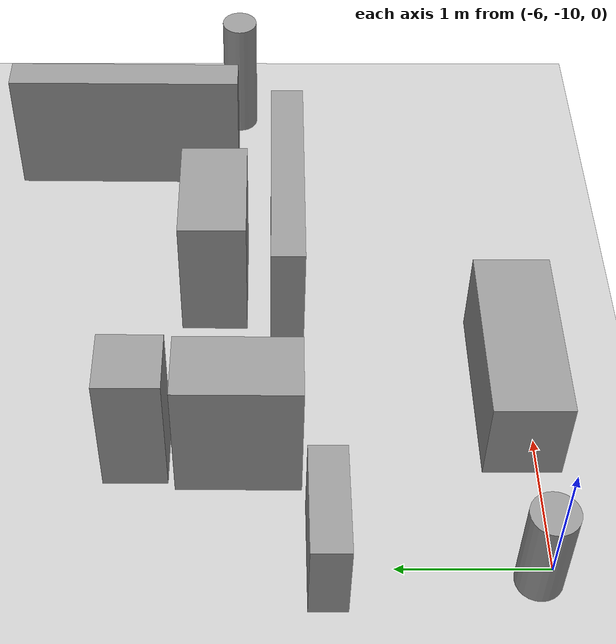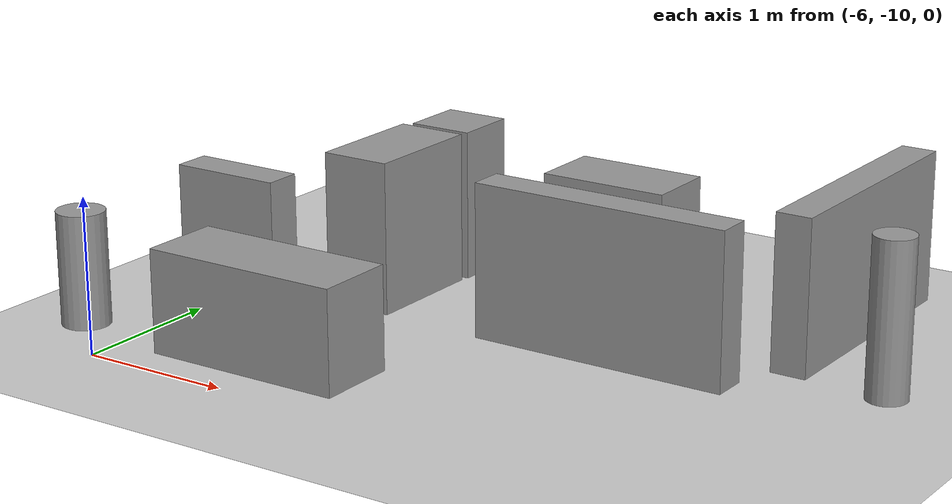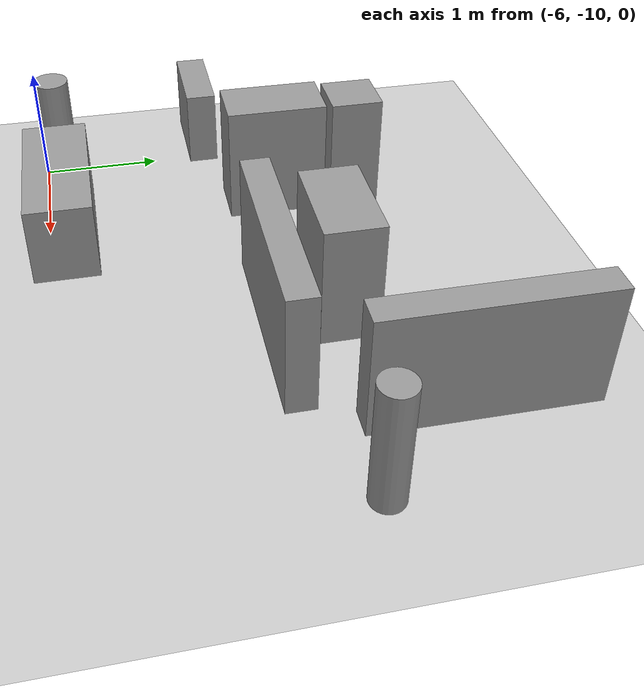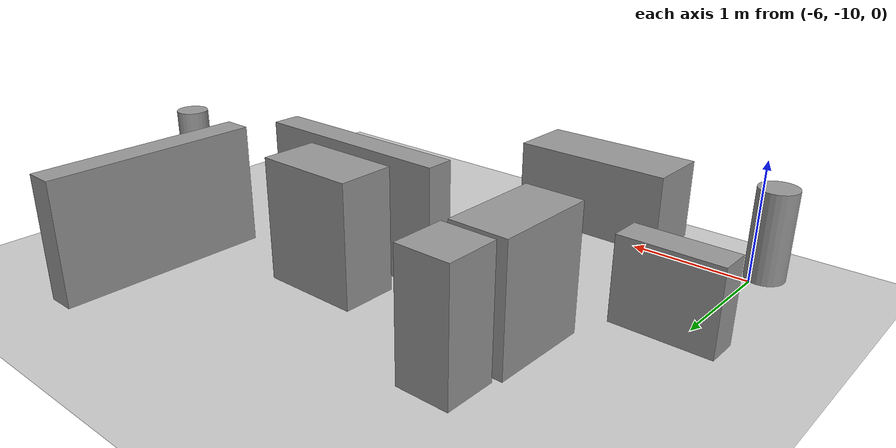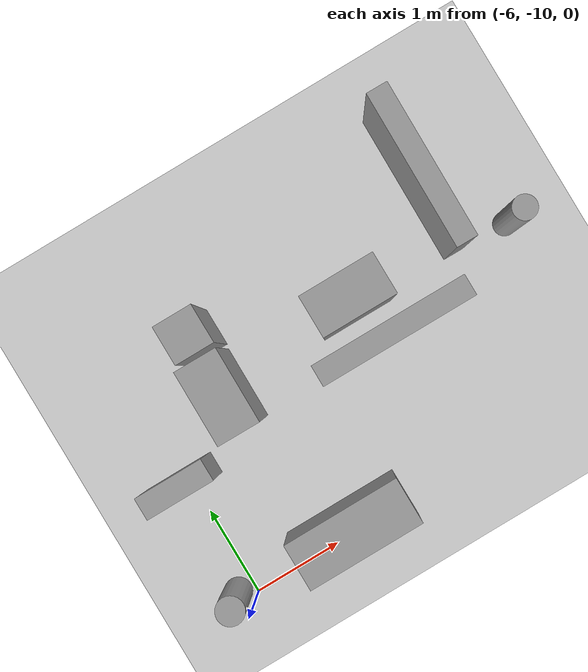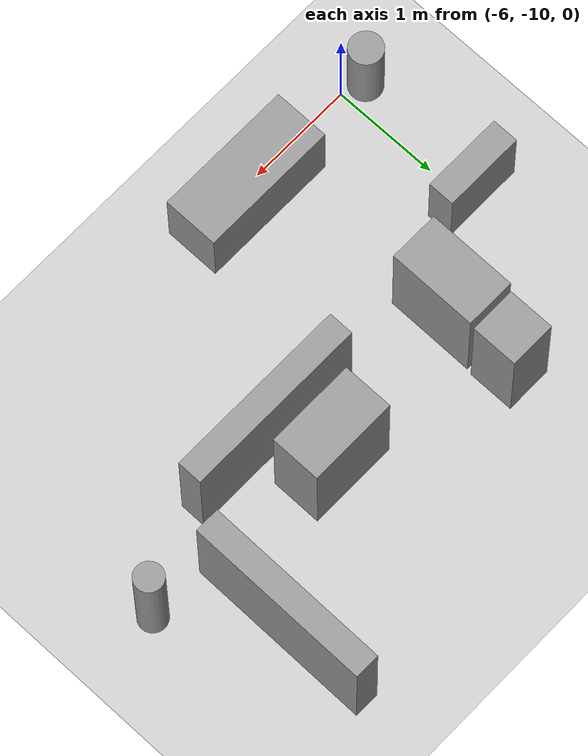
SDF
<sdf version="1.6">
 <world name="default">
  <model name="ground_plane">
   <static>1</static>
   <link name="link">
    <collision name="collision">
     <geometry><plane><normal>0 0 1</normal><size>100 100</size></plane></geometry>
     <surface><friction><ode><mu>100</mu><mu2>50</mu2></ode></friction></surface>
    </collision>
    <visual name="visual">
     <cast_shadows>0</cast_shadows>
     <geometry><plane><normal>0 0 1</normal><size>100 100</size></plane></geometry>
     <material>
      <script><uri>file://media/materials/scripts/gazebo.material</uri><name>Gazebo/Grey</name></script>
     </material>
    </visual>
   </link>
  </model>
  <model name="cma_armario_s_0">
   <link name="link_1">
    <pose>-2e-06 -3e-06 0 0 -0 0</pose>
    <inertial>
     <mass>0.390159</mass>
     <inertia>
      <ixx>0.039647</ixx>
      <ixy>0</ixy>
      <ixz>0</ixz>
      <iyy>0.0550708</iyy>
      <iyz>0</iyz>
      <izz>0.0296912</izz>
     </inertia>
    </inertial>
    <visual name="visual">
     <geometry><box><size>0.832942 0.468397 1</size></box></geometry>
     <material>
      <lighting>1</lighting>
      <script><uri>file://media/materials/scripts/gazebo.material</uri><name>Gazebo/Grey</name></script>
      <ambient>0.3 0.3 0.3 1</ambient>
      <diffuse>0.7 0.7 0.7 1</diffuse>
      <specular>0.01 0.01 0.01 1</specular>
      <emissive>0 0 0 1</emissive>
     </material>
    </visual>
    <collision name="collision">
     <geometry><box><size>0.832942 0.468397 1</size></box></geometry>
     <surface>
      <friction>
       <ode><mu>1</mu><mu2>1</mu2><fdir1>0 0 0</fdir1><slip1>0</slip1><slip2>0</slip2></ode>
       <torsional>
        <coefficient>1</coefficient>
        <patch_radius>0</patch_radius>
        <surface_radius>0</surface_radius>
        <use_patch_radius>1</use_patch_radius>
        <ode><slip>0</slip></ode>
       </torsional>
      </friction>
      <bounce><restitution_coefficient>0</restitution_coefficient><threshold>1e+06</threshold></bounce>
      <contact>
       <collide_without_contact>0</collide_without_contact>
       <collide_without_contact_bitmask>1</collide_without_contact_bitmask>
       <collide_bitmask>1</collide_bitmask>
       <ode>
        <soft_cfm>0</soft_cfm>
        <soft_erp>0.2</soft_erp>
        <kp>1e+13</kp>
        <kd>1</kd>
        <max_vel>0.01</max_vel>
        <min_depth>0</min_depth>
       </ode>
       <bullet>
        <split_impulse>1</split_impulse>
        <split_impulse_penetration_threshold>-0.01</split_impulse_penetration_threshold>
        <soft_cfm>0</soft_cfm>
        <soft_erp>0.2</soft_erp>
        <kp>1e+13</kp>
        <kd>1</kd>
       </bullet>
      </contact>
     </surface>
    </collision>
   </link>
   <static>0</static>
   <pose>-5.1684 -8.01557 0.499996 1e-06 -1e-05 -1.57588</pose>
  </model>
  <model name="cma_gaveteiro_pequeno_2">
   <link name="link_0">
    <pose>0.256174 1.25055 0.5 0 -0 0</pose>
    <inertial>
     <mass>0.187186</mass>
     <inertia>
      <ixx>0.01851</ixx>
      <ixy>0</ixy>
      <ixz>0</ixz>
      <iyy>0.0185276</iyy>
      <iyz>0</iyz>
      <izz>0.00583981</izz>
     </inertia>
    </inertial>
    <visual name="visual">
     <geometry><box><size>0.433317 0.432002 1</size></box></geometry>
     <material>
      <lighting>1</lighting>
      <script><uri>file://media/materials/scripts/gazebo.material</uri><name>Gazebo/Grey</name></script>
      <ambient>0.3 0.3 0.3 1</ambient>
      <diffuse>0.7 0.7 0.7 1</diffuse>
      <specular>0.01 0.01 0.01 1</specular>
      <emissive>0 0 0 1</emissive>
     </material>
    </visual>
    <collision name="collision">
     <geometry><box><size>0.433317 0.432002 1</size></box></geometry>
     <surface>
      <friction>
       <ode><mu>1</mu><mu2>1</mu2><fdir1>0 0 0</fdir1><slip1>0</slip1><slip2>0</slip2></ode>
       <torsional>
        <coefficient>1</coefficient>
        <patch_radius>0</patch_radius>
        <surface_radius>0</surface_radius>
        <use_patch_radius>1</use_patch_radius>
        <ode><slip>0</slip></ode>
       </torsional>
      </friction>
      <bounce><restitution_coefficient>0</restitution_coefficient><threshold>1e+06</threshold></bounce>
      <contact>
       <collide_without_contact>0</collide_without_contact>
       <collide_without_contact_bitmask>1</collide_without_contact_bitmask>
       <collide_bitmask>1</collide_bitmask>
       <ode>
        <soft_cfm>0</soft_cfm>
        <soft_erp>0.2</soft_erp>
        <kp>1e+13</kp>
        <kd>1</kd>
        <max_vel>0.01</max_vel>
        <min_depth>0</min_depth>
       </ode>
       <bullet>
        <split_impulse>1</split_impulse>
        <split_impulse_penetration_threshold>-0.01</split_impulse_penetration_threshold>
        <soft_cfm>0</soft_cfm>
        <soft_erp>0.2</soft_erp>
        <kp>1e+13</kp>
        <kd>1</kd>
       </bullet>
      </contact>
     </surface>
    </collision>
   </link>
   <static>0</static>
   <pose>-5.39165 -8.58551 4e-06 -2e-06 1e-06 -5.3e-05</pose>
  </model>
  <model name="cma_armario_s_1">
   <link name="link_1">
    <pose>-2e-06 -3e-06 0 0 -0 0</pose>
    <inertial>
     <mass>0.390159</mass>
     <inertia>
      <ixx>0.039647</ixx>
      <ixy>0</ixy>
      <ixz>0</ixz>
      <iyy>0.0550708</iyy>
      <iyz>0</iyz>
      <izz>0.0296912</izz>
     </inertia>
    </inertial>
    <visual name="visual">
     <geometry><box><size>0.832942 0.468397 1</size></box></geometry>
     <material>
      <lighting>1</lighting>
      <script><uri>file://media/materials/scripts/gazebo.material</uri><name>Gazebo/Grey</name></script>
      <ambient>0.3 0.3 0.3 1</ambient>
      <diffuse>0.7 0.7 0.7 1</diffuse>
      <specular>0.01 0.01 0.01 1</specular>
      <emissive>0 0 0 1</emissive>
     </material>
    </visual>
    <collision name="collision">
     <geometry><box><size>0.832942 0.468397 1</size></box></geometry>
     <surface>
      <friction>
       <ode><mu>1</mu><mu2>1</mu2><fdir1>0 0 0</fdir1><slip1>0</slip1><slip2>0</slip2></ode>
       <torsional>
        <coefficient>1</coefficient>
        <patch_radius>0</patch_radius>
        <surface_radius>0</surface_radius>
        <use_patch_radius>1</use_patch_radius>
        <ode><slip>0</slip></ode>
       </torsional>
      </friction>
      <bounce><restitution_coefficient>0</restitution_coefficient><threshold>1e+06</threshold></bounce>
      <contact>
       <collide_without_contact>0</collide_without_contact>
       <collide_without_contact_bitmask>1</collide_without_contact_bitmask>
       <collide_bitmask>1</collide_bitmask>
       <ode>
        <soft_cfm>0</soft_cfm>
        <soft_erp>0.2</soft_erp>
        <kp>1e+13</kp>
        <kd>1</kd>
        <max_vel>0.01</max_vel>
        <min_depth>0</min_depth>
       </ode>
       <bullet>
        <split_impulse>1</split_impulse>
        <split_impulse_penetration_threshold>-0.01</split_impulse_penetration_threshold>
        <soft_cfm>0</soft_cfm>
        <soft_erp>0.2</soft_erp>
        <kp>1e+13</kp>
        <kd>1</kd>
       </bullet>
      </contact>
     </surface>
    </collision>
   </link>
   <static>0</static>
   <pose>-3.57951 -7.8237 0.499999 -4e-06 -0 -9.7e-05</pose>
  </model>
  <model name="cma_armario_1">
   <link name="link_0">
    <pose>1.32157 0.885178 0.5 0 -0 0</pose>
    <inertial>
     <mass>0.402376</mass>
     <inertia>
      <ixx>0.0353686</ixx>
      <ixy>0</ixy>
      <ixz>0</ixz>
      <iyy>0.132616</iyy>
      <iyz>0</iyz>
      <izz>0.100922</izz>
     </inertia>
    </inertial>
    <visual name="visual">
     <geometry><box><size>1.71877 0.234069 1</size></box></geometry>
     <material>
      <lighting>1</lighting>
      <script><uri>file://media/materials/scripts/gazebo.material</uri><name>Gazebo/Grey</name></script>
      <ambient>0.3 0.3 0.3 1</ambient>
      <diffuse>0.7 0.7 0.7 1</diffuse>
      <specular>0.01 0.01 0.01 1</specular>
      <emissive>0 0 0 1</emissive>
     </material>
    </visual>
    <collision name="collision">
     <geometry><box><size>1.71877 0.234069 1</size></box></geometry>
     <surface>
      <friction>
       <ode><mu>1</mu><mu2>1</mu2><fdir1>0 0 0</fdir1><slip1>0</slip1><slip2>0</slip2></ode>
       <torsional>
        <coefficient>1</coefficient>
        <patch_radius>0</patch_radius>
        <surface_radius>0</surface_radius>
        <use_patch_radius>1</use_patch_radius>
        <ode><slip>0</slip></ode>
       </torsional>
      </friction>
      <bounce><restitution_coefficient>0</restitution_coefficient><threshold>1e+06</threshold></bounce>
      <contact>
       <collide_without_contact>0</collide_without_contact>
       <collide_without_contact_bitmask>1</collide_without_contact_bitmask>
       <collide_bitmask>1</collide_bitmask>
       <ode>
        <soft_cfm>0</soft_cfm>
        <soft_erp>0.2</soft_erp>
        <kp>1e+13</kp>
        <kd>1</kd>
        <max_vel>0.01</max_vel>
        <min_depth>0</min_depth>
       </ode>
       <bullet>
        <split_impulse>1</split_impulse>
        <split_impulse_penetration_threshold>-0.01</split_impulse_penetration_threshold>
        <soft_cfm>0</soft_cfm>
        <soft_erp>0.2</soft_erp>
        <kp>1e+13</kp>
        <kd>1</kd>
       </bullet>
      </contact>
     </surface>
    </collision>
   </link>
   <static>0</static>
   <pose>-4.70125 -9.22622 0 0 0 -0.002383</pose>
  </model>
  <model name="cma_armario_2_clone">
   <link name="link_0">
    <pose>1.32157 0.885178 0.5 0 -0 0</pose>
    <inertial>
     <mass>0.402376</mass>
     <inertia>
      <ixx>0.0353686</ixx>
      <ixy>0</ixy>
      <ixz>0</ixz>
      <iyy>0.132616</iyy>
      <iyz>0</iyz>
      <izz>0.100922</izz>
     </inertia>
    </inertial>
    <visual name="visual">
     <geometry><box><size>1.71877 0.234069 1</size></box></geometry>
     <material>
      <lighting>1</lighting>
      <script><uri>file://media/materials/scripts/gazebo.material</uri><name>Gazebo/Grey</name></script>
      <ambient>0.3 0.3 0.3 1</ambient>
      <diffuse>0.7 0.7 0.7 1</diffuse>
      <specular>0.01 0.01 0.01 1</specular>
      <emissive>0 0 0 1</emissive>
     </material>
    </visual>
    <collision name="collision">
     <geometry><box><size>1.71877 0.234069 1</size></box></geometry>
     <surface>
      <friction>
       <ode><mu>1</mu><mu2>1</mu2><fdir1>0 0 0</fdir1><slip1>0</slip1><slip2>0</slip2></ode>
       <torsional>
        <coefficient>1</coefficient>
        <patch_radius>0</patch_radius>
        <surface_radius>0</surface_radius>
        <use_patch_radius>1</use_patch_radius>
        <ode><slip>0</slip></ode>
       </torsional>
      </friction>
      <bounce><restitution_coefficient>0</restitution_coefficient><threshold>1e+06</threshold></bounce>
      <contact>
       <collide_without_contact>0</collide_without_contact>
       <collide_without_contact_bitmask>1</collide_without_contact_bitmask>
       <collide_bitmask>1</collide_bitmask>
       <ode>
        <soft_cfm>0</soft_cfm>
        <soft_erp>0.2</soft_erp>
        <kp>1e+13</kp>
        <kd>1</kd>
        <max_vel>0.01</max_vel>
        <min_depth>0</min_depth>
       </ode>
       <bullet>
        <split_impulse>1</split_impulse>
        <split_impulse_penetration_threshold>-0.01</split_impulse_penetration_threshold>
        <soft_cfm>0</soft_cfm>
        <soft_erp>0.2</soft_erp>
        <kp>1e+13</kp>
        <kd>1</kd>
       </bullet>
      </contact>
     </surface>
    </collision>
   </link>
   <static>0</static>
   <pose>-1.44875 -8.44619 0 0 -0 1.56278</pose>
  </model>
  <model name="cma_lixo_1">
   <link name="link_1">
    <pose>0.882962 1.81586 0.5 0 -0 0</pose>
    <inertial>
     <mass>0.0687644</mass>
     <inertia>
      <ixx>0.00602588</ixx>
      <ixy>0</ixy>
      <ixz>0</ixz>
      <iyy>0.00602588</iyy>
      <iyz>0</iyz>
      <izz>0.000591068</izz>
     </inertia>
    </inertial>
    <visual name="visual">
     <geometry><cylinder><radius>0.131112</radius><length>1</length></cylinder></geometry>
     <material>
      <lighting>1</lighting>
      <script><uri>file://media/materials/scripts/gazebo.material</uri><name>Gazebo/Grey</name></script>
      <ambient>0.3 0.3 0.3 1</ambient>
      <diffuse>0.7 0.7 0.7 1</diffuse>
      <specular>0.01 0.01 0.01 1</specular>
      <emissive>0 0 0 1</emissive>
     </material>
    </visual>
    <collision name="collision">
     <geometry><cylinder><radius>0.131112</radius><length>1</length></cylinder></geometry>
     <surface>
      <friction>
       <ode><mu>1</mu><mu2>1</mu2><fdir1>0 0 0</fdir1><slip1>0</slip1><slip2>0</slip2></ode>
       <torsional>
        <coefficient>1</coefficient>
        <patch_radius>0</patch_radius>
        <surface_radius>0</surface_radius>
        <use_patch_radius>1</use_patch_radius>
        <ode><slip>0</slip></ode>
       </torsional>
      </friction>
      <bounce><restitution_coefficient>0</restitution_coefficient><threshold>1e+06</threshold></bounce>
      <contact>
       <collide_without_contact>0</collide_without_contact>
       <collide_without_contact_bitmask>1</collide_without_contact_bitmask>
       <collide_bitmask>1</collide_bitmask>
       <ode>
        <soft_cfm>0</soft_cfm>
        <soft_erp>0.2</soft_erp>
        <kp>1e+13</kp>
        <kd>1</kd>
        <max_vel>0.01</max_vel>
        <min_depth>0</min_depth>
       </ode>
       <bullet>
        <split_impulse>1</split_impulse>
        <split_impulse_penetration_threshold>-0.01</split_impulse_penetration_threshold>
        <soft_cfm>0</soft_cfm>
        <soft_erp>0.2</soft_erp>
        <kp>1e+13</kp>
        <kd>1</kd>
       </bullet>
      </contact>
     </surface>
    </collision>
   </link>
   <static>0</static>
   <pose>-2.57103 -9.7975 -2e-06 0 -0 0</pose>
  </model>
  <model name="cma_sut_a1">
   <link name="link_0">
    <pose>2e-06 2e-06 0 0 -0 0</pose>
    <inertial>
     <mass>0.432067</mass>
     <inertia>
      <ixx>0.0246645</ixx>
      <ixy>0</ixy>
      <ixz>0</ixz>
      <iyy>0.0751042</iyy>
      <iyz>0</iyz>
      <izz>0.0697721</izz>
     </inertia>
    </inertial>
    <visual name="visual">
     <geometry><box><size>1.29203 0.518133 0.645405</size></box></geometry>
     <material>
      <lighting>1</lighting>
      <script><uri>file://media/materials/scripts/gazebo.material</uri><name>Gazebo/Grey</name></script>
      <ambient>0.3 0.3 0.3 1</ambient>
      <diffuse>0.7 0.7 0.7 1</diffuse>
      <specular>0.01 0.01 0.01 1</specular>
      <emissive>0 0 0 1</emissive>
     </material>
    </visual>
    <collision name="collision">
     <geometry><box><size>1.29203 0.518133 0.645405</size></box></geometry>
     <surface>
      <friction>
       <ode><mu>1</mu><mu2>1</mu2><fdir1>0 0 0</fdir1><slip1>0</slip1><slip2>0</slip2></ode>
       <torsional>
        <coefficient>1</coefficient>
        <patch_radius>0</patch_radius>
        <surface_radius>0</surface_radius>
        <use_patch_radius>1</use_patch_radius>
        <ode><slip>0</slip></ode>
       </torsional>
      </friction>
      <bounce><restitution_coefficient>0</restitution_coefficient><threshold>1e+06</threshold></bounce>
      <contact>
       <collide_without_contact>0</collide_without_contact>
       <collide_without_contact_bitmask>1</collide_without_contact_bitmask>
       <collide_bitmask>1</collide_bitmask>
       <ode>
        <soft_cfm>0</soft_cfm>
        <soft_erp>0.2</soft_erp>
        <kp>1e+13</kp>
        <kd>1</kd>
        <max_vel>0.01</max_vel>
        <min_depth>0</min_depth>
       </ode>
       <bullet>
        <split_impulse>1</split_impulse>
        <split_impulse_penetration_threshold>-0.01</split_impulse_penetration_threshold>
        <soft_cfm>0</soft_cfm>
        <soft_erp>0.2</soft_erp>
        <kp>1e+13</kp>
        <kd>1</kd>
       </bullet>
      </contact>
     </surface>
    </collision>
   </link>
   <static>0</static>
   <pose>-4.7378 -9.85666 0.5 0 -0 0</pose>
  </model>
  <model name="cma_sui_v">
   <link name="link_1">
    <pose>5e-06 -5e-06 0 0 -0 0</pose>
    <inertial>
     <mass>0.0677992</mass>
     <inertia>
      <ixx>0.00334545</ixx>
      <ixy>0</ixy>
      <ixz>0</ixz>
      <iyy>0.00334545</iyy>
      <iyz>0</iyz>
      <izz>0.000795496</izz>
     </inertia>
    </inertial>
    <visual name="visual">
     <geometry><cylinder><radius>0.153185</radius><length>0.722306</length></cylinder></geometry>
     <material>
      <lighting>1</lighting>
      <script><uri>file://media/materials/scripts/gazebo.material</uri><name>Gazebo/Grey</name></script>
      <ambient>0.3 0.3 0.3 1</ambient>
      <diffuse>0.7 0.7 0.7 1</diffuse>
      <specular>0.01 0.01 0.01 1</specular>
      <emissive>0 0 0 1</emissive>
     </material>
    </visual>
    <collision name="collision">
     <geometry><cylinder><radius>0.153185</radius><length>0.722306</length></cylinder></geometry>
     <surface>
      <friction>
       <ode><mu>1</mu><mu2>1</mu2><fdir1>0 0 0</fdir1><slip1>0</slip1><slip2>0</slip2></ode>
       <torsional>
        <coefficient>1</coefficient>
        <patch_radius>0</patch_radius>
        <surface_radius>0</surface_radius>
        <use_patch_radius>1</use_patch_radius>
        <ode><slip>0</slip></ode>
       </torsional>
      </friction>
      <bounce><restitution_coefficient>0</restitution_coefficient><threshold>1e+06</threshold></bounce>
      <contact>
       <collide_without_contact>0</collide_without_contact>
       <collide_without_contact_bitmask>1</collide_without_contact_bitmask>
       <collide_bitmask>1</collide_bitmask>
       <ode>
        <soft_cfm>0</soft_cfm>
        <soft_erp>0.2</soft_erp>
        <kp>1e+13</kp>
        <kd>1</kd>
        <max_vel>0.01</max_vel>
        <min_depth>0</min_depth>
       </ode>
       <bullet>
        <split_impulse>1</split_impulse>
        <split_impulse_penetration_threshold>-0.01</split_impulse_penetration_threshold>
        <soft_cfm>0</soft_cfm>
        <soft_erp>0.2</soft_erp>
        <kp>1e+13</kp>
        <kd>1</kd>
       </bullet>
      </contact>
     </surface>
    </collision>
   </link>
   <static>0</static>
   <pose>-6.15386 -9.87004 0.5 0 -0 0</pose>
  </model>
  <model name="cma_sui_b">
   <link name="link_2">
    <pose>-0 1e-06 0 0 -0 0</pose>
    <inertial>
     <mass>0.12198</mass>
     <inertia>
      <ixx>0.00488904</ixx>
      <ixy>0</ixy>
      <ixz>0</ixz>
      <iyy>0.0101198</iyy>
      <iyz>0</iyz>
      <izz>0.00648257</izz>
     </inertia>
    </inertial>
    <visual name="visual">
     <geometry><box><size>0.75905 0.248141 0.647606</size></box></geometry>
     <material>
      <lighting>1</lighting>
      <script><uri>file://media/materials/scripts/gazebo.material</uri><name>Gazebo/Grey</name></script>
      <ambient>0.3 0.3 0.3 1</ambient>
      <diffuse>0.7 0.7 0.7 1</diffuse>
      <specular>0.01 0.01 0.01 1</specular>
      <emissive>0 0 0 1</emissive>
     </material>
    </visual>
    <collision name="collision">
     <geometry><box><size>0.75905 0.248141 0.647606</size></box></geometry>
     <surface>
      <friction>
       <ode><mu>1</mu><mu2>1</mu2><fdir1>0 0 0</fdir1><slip1>0</slip1><slip2>0</slip2></ode>
       <torsional>
        <coefficient>1</coefficient>
        <patch_radius>0</patch_radius>
        <surface_radius>0</surface_radius>
        <use_patch_radius>1</use_patch_radius>
        <ode><slip>0</slip></ode>
       </torsional>
      </friction>
      <bounce><restitution_coefficient>0</restitution_coefficient><threshold>1e+06</threshold></bounce>
      <contact>
       <collide_without_contact>0</collide_without_contact>
       <collide_without_contact_bitmask>1</collide_without_contact_bitmask>
       <collide_bitmask>1</collide_bitmask>
       <ode>
        <soft_cfm>0</soft_cfm>
        <soft_erp>0.2</soft_erp>
        <kp>1e+13</kp>
        <kd>1</kd>
        <max_vel>0.01</max_vel>
        <min_depth>0</min_depth>
       </ode>
       <bullet>
        <split_impulse>1</split_impulse>
        <split_impulse_penetration_threshold>-0.01</split_impulse_penetration_threshold>
        <soft_cfm>0</soft_cfm>
        <soft_erp>0.2</soft_erp>
        <kp>1e+13</kp>
        <kd>1</kd>
       </bullet>
      </contact>
     </surface>
    </collision>
   </link>
   <static>0</static>
   <pose>-6.02145 -8.57087 0.5 0 -0 0</pose>
  </model>
 </world>
</sdf>
